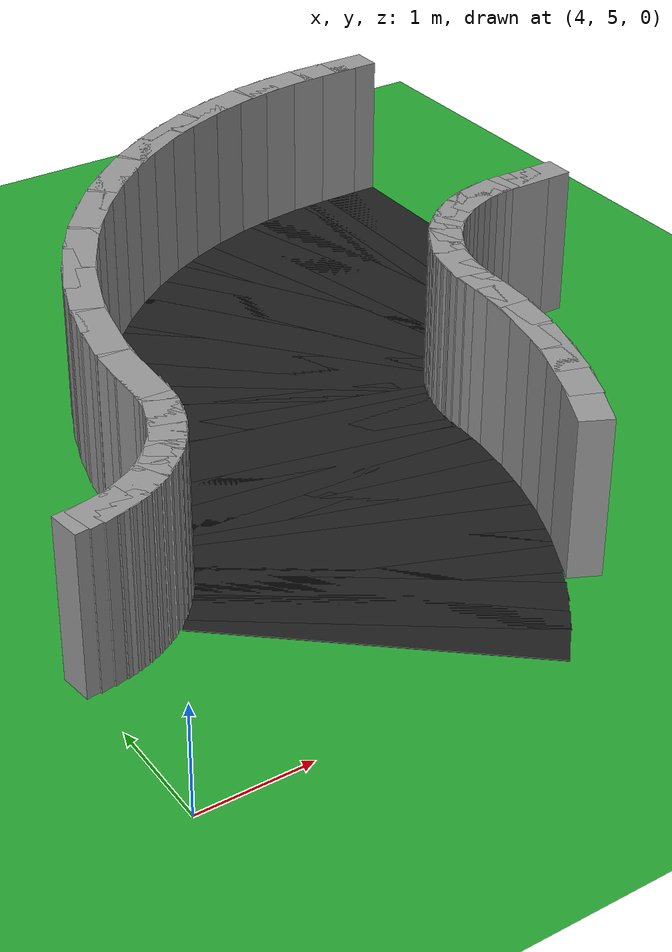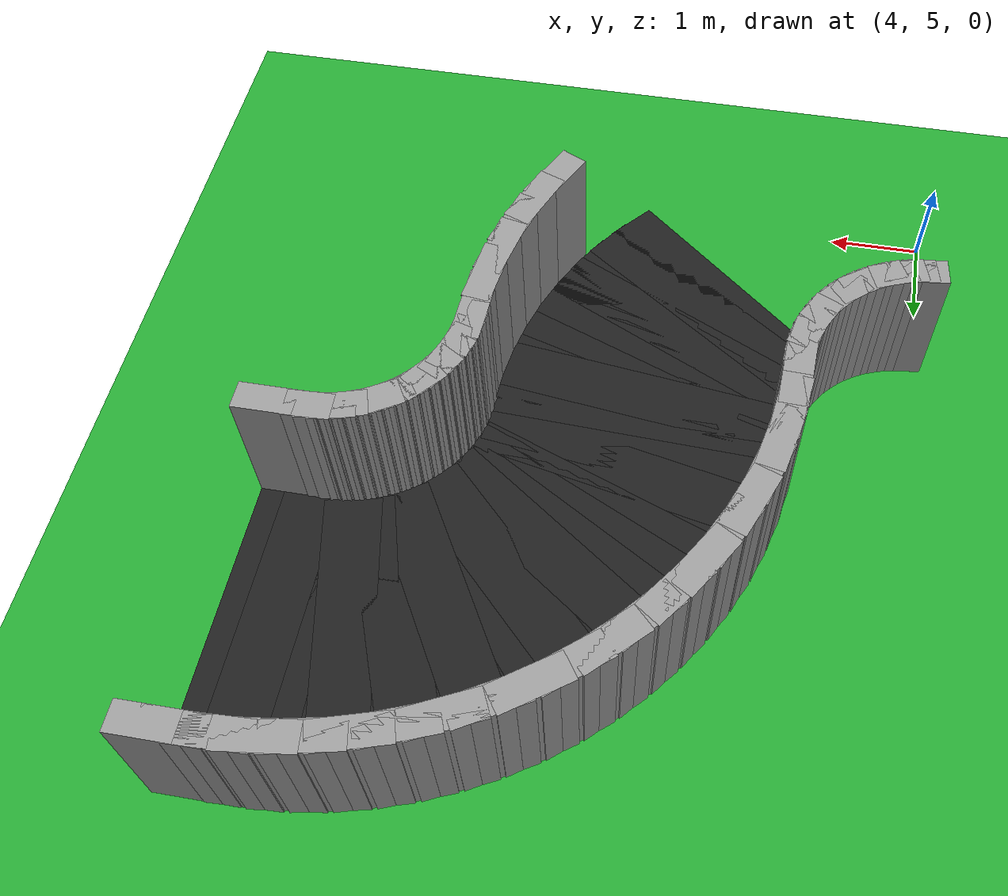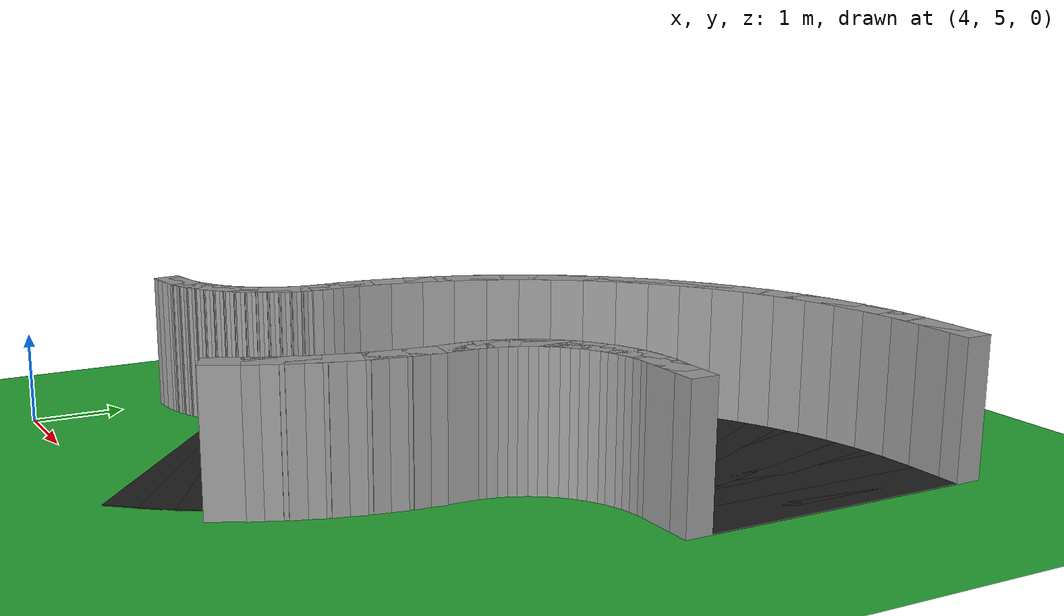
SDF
<sdf version="1.6">
 <world name="loop_extreme">
  <include><uri>model://sun</uri></include>
  <model name="ground_plane">
   <static>true</static>
   <link name="link">
    <collision name="collision">
     <surface><friction><ode><mu>100</mu><mu2>50</mu2></ode></friction></surface>
     <geometry><plane><normal>0 0 1</normal><size>120 120</size></plane></geometry>
    </collision>
    <visual name="visual">
     <geometry><plane><normal>0 0 1</normal><size>120 120</size></plane></geometry>
     <material>
      <script><uri>file://media/materials/scripts/gazebo.material</uri><name>Gazebo/Green</name></script>
     </material>
    </visual>
   </link>
  </model>
  <model name="asphalt_203">
   <static>true</static>
   <pose>10.377 11.004 0.005 0 0 3.14159</pose>
   <link name="link">
    <visual name="visual">
     <geometry><box><size>0.610 3.000 0.010</size></box></geometry>
     <material>
      <script><uri>file://media/materials/scripts/gazebo.material</uri><name>Gazebo/Black</name></script>
     </material>
    </visual>
   </link>
  </model>
  <model name="curbL_203">
   <static>true</static>
   <pose>10.377 9.354 0.750 0 0 3.14159</pose>
   <link name="link">
    <collision name="collision"><geometry><box><size>0.610 0.300 1.500</size></box></geometry></collision>
    <visual name="visual">
     <geometry><box><size>0.610 0.300 1.500</size></box></geometry>
     <material>
      <script><uri>file://media/materials/scripts/gazebo.material</uri><name>Gazebo/Grey</name></script>
     </material>
    </visual>
   </link>
  </model>
  <model name="curbR_203">
   <static>true</static>
   <pose>10.377 12.654 0.750 0 0 3.14159</pose>
   <link name="link">
    <collision name="collision"><geometry><box><size>0.610 0.300 1.500</size></box></geometry></collision>
    <visual name="visual">
     <geometry><box><size>0.610 0.300 1.500</size></box></geometry>
     <material>
      <script><uri>file://media/materials/scripts/gazebo.material</uri><name>Gazebo/Grey</name></script>
     </material>
    </visual>
   </link>
  </model>
  <model name="asphalt_204">
   <static>true</static>
   <pose>10.127 11.004 0.005 0 0 3.14159</pose>
   <link name="link">
    <visual name="visual">
     <geometry><box><size>0.610 3.000 0.010</size></box></geometry>
     <material>
      <script><uri>file://media/materials/scripts/gazebo.material</uri><name>Gazebo/Black</name></script>
     </material>
    </visual>
   </link>
  </model>
  <model name="curbL_204">
   <static>true</static>
   <pose>10.127 9.354 0.750 0 0 3.14159</pose>
   <link name="link">
    <collision name="collision"><geometry><box><size>0.610 0.300 1.500</size></box></geometry></collision>
    <visual name="visual">
     <geometry><box><size>0.610 0.300 1.500</size></box></geometry>
     <material>
      <script><uri>file://media/materials/scripts/gazebo.material</uri><name>Gazebo/Grey</name></script>
     </material>
    </visual>
   </link>
  </model>
  <model name="curbR_204">
   <static>true</static>
   <pose>10.127 12.654 0.750 0 0 3.14159</pose>
   <link name="link">
    <collision name="collision"><geometry><box><size>0.610 0.300 1.500</size></box></geometry></collision>
    <visual name="visual">
     <geometry><box><size>0.610 0.300 1.500</size></box></geometry>
     <material>
      <script><uri>file://media/materials/scripts/gazebo.material</uri><name>Gazebo/Grey</name></script>
     </material>
    </visual>
   </link>
  </model>
  <model name="asphalt_205">
   <static>true</static>
   <pose>9.878 10.999 0.005 0 0 -3.10026</pose>
   <link name="link">
    <visual name="visual">
     <geometry><box><size>0.608 3.000 0.010</size></box></geometry>
     <material>
      <script><uri>file://media/materials/scripts/gazebo.material</uri><name>Gazebo/Black</name></script>
     </material>
    </visual>
   </link>
  </model>
  <model name="curbL_205">
   <static>true</static>
   <pose>9.946 9.352 0.750 0 0 -3.10026</pose>
   <link name="link">
    <collision name="collision"><geometry><box><size>0.472 0.300 1.500</size></box></geometry></collision>
    <visual name="visual">
     <geometry><box><size>0.472 0.300 1.500</size></box></geometry>
     <material>
      <script><uri>file://media/materials/scripts/gazebo.material</uri><name>Gazebo/Grey</name></script>
     </material>
    </visual>
   </link>
  </model>
  <model name="curbR_205">
   <static>true</static>
   <pose>9.810 12.646 0.750 0 0 -3.10026</pose>
   <link name="link">
    <collision name="collision"><geometry><box><size>0.744 0.300 1.500</size></box></geometry></collision>
    <visual name="visual">
     <geometry><box><size>0.744 0.300 1.500</size></box></geometry>
     <material>
      <script><uri>file://media/materials/scripts/gazebo.material</uri><name>Gazebo/Grey</name></script>
     </material>
    </visual>
   </link>
  </model>
  <model name="asphalt_206">
   <static>true</static>
   <pose>9.631 10.978 0.005 0 0 -3.01758</pose>
   <link name="link">
    <visual name="visual">
     <geometry><box><size>0.608 3.000 0.010</size></box></geometry>
     <material>
      <script><uri>file://media/materials/scripts/gazebo.material</uri><name>Gazebo/Black</name></script>
     </material>
    </visual>
   </link>
  </model>
  <model name="curbL_206">
   <static>true</static>
   <pose>9.835 9.342 0.750 0 0 -3.01758</pose>
   <link name="link">
    <collision name="collision"><geometry><box><size>0.472 0.300 1.500</size></box></geometry></collision>
    <visual name="visual">
     <geometry><box><size>0.472 0.300 1.500</size></box></geometry>
     <material>
      <script><uri>file://media/materials/scripts/gazebo.material</uri><name>Gazebo/Grey</name></script>
     </material>
    </visual>
   </link>
  </model>
  <model name="curbR_206">
   <static>true</static>
   <pose>9.427 12.614 0.750 0 0 -3.01758</pose>
   <link name="link">
    <collision name="collision"><geometry><box><size>0.744 0.300 1.500</size></box></geometry></collision>
    <visual name="visual">
     <geometry><box><size>0.744 0.300 1.500</size></box></geometry>
     <material>
      <script><uri>file://media/materials/scripts/gazebo.material</uri><name>Gazebo/Grey</name></script>
     </material>
    </visual>
   </link>
  </model>
  <model name="asphalt_207">
   <static>true</static>
   <pose>9.386 10.937 0.005 0 0 -2.93491</pose>
   <link name="link">
    <visual name="visual">
     <geometry><box><size>0.608 3.000 0.010</size></box></geometry>
     <material>
      <script><uri>file://media/materials/scripts/gazebo.material</uri><name>Gazebo/Black</name></script>
     </material>
    </visual>
   </link>
  </model>
  <model name="curbL_207">
   <static>true</static>
   <pose>9.725 9.324 0.750 0 0 -2.93491</pose>
   <link name="link">
    <collision name="collision"><geometry><box><size>0.472 0.300 1.500</size></box></geometry></collision>
    <visual name="visual">
     <geometry><box><size>0.472 0.300 1.500</size></box></geometry>
     <material>
      <script><uri>file://media/materials/scripts/gazebo.material</uri><name>Gazebo/Grey</name></script>
     </material>
    </visual>
   </link>
  </model>
  <model name="curbR_207">
   <static>true</static>
   <pose>9.048 12.551 0.750 0 0 -2.93491</pose>
   <link name="link">
    <collision name="collision"><geometry><box><size>0.744 0.300 1.500</size></box></geometry></collision>
    <visual name="visual">
     <geometry><box><size>0.744 0.300 1.500</size></box></geometry>
     <material>
      <script><uri>file://media/materials/scripts/gazebo.material</uri><name>Gazebo/Grey</name></script>
     </material>
    </visual>
   </link>
  </model>
  <model name="asphalt_208">
   <static>true</static>
   <pose>9.146 10.877 0.005 0 0 -2.85224</pose>
   <link name="link">
    <visual name="visual">
     <geometry><box><size>0.608 3.000 0.010</size></box></geometry>
     <material>
      <script><uri>file://media/materials/scripts/gazebo.material</uri><name>Gazebo/Black</name></script>
     </material>
    </visual>
   </link>
  </model>
  <model name="curbL_208">
   <static>true</static>
   <pose>9.617 9.297 0.750 0 0 -2.85224</pose>
   <link name="link">
    <collision name="collision"><geometry><box><size>0.472 0.300 1.500</size></box></geometry></collision>
    <visual name="visual">
     <geometry><box><size>0.472 0.300 1.500</size></box></geometry>
     <material>
      <script><uri>file://media/materials/scripts/gazebo.material</uri><name>Gazebo/Grey</name></script>
     </material>
    </visual>
   </link>
  </model>
  <model name="curbR_208">
   <static>true</static>
   <pose>8.676 12.457 0.750 0 0 -2.85224</pose>
   <link name="link">
    <collision name="collision"><geometry><box><size>0.744 0.300 1.500</size></box></geometry></collision>
    <visual name="visual">
     <geometry><box><size>0.744 0.300 1.500</size></box></geometry>
     <material>
      <script><uri>file://media/materials/scripts/gazebo.material</uri><name>Gazebo/Grey</name></script>
     </material>
    </visual>
   </link>
  </model>
  <model name="asphalt_209">
   <static>true</static>
   <pose>8.912 10.796 0.005 0 0 -2.76956</pose>
   <link name="link">
    <visual name="visual">
     <geometry><box><size>0.608 3.000 0.010</size></box></geometry>
     <material>
      <script><uri>file://media/materials/scripts/gazebo.material</uri><name>Gazebo/Black</name></script>
     </material>
    </visual>
   </link>
  </model>
  <model name="curbL_209">
   <static>true</static>
   <pose>9.511 9.260 0.750 0 0 -2.76956</pose>
   <link name="link">
    <collision name="collision"><geometry><box><size>0.472 0.300 1.500</size></box></geometry></collision>
    <visual name="visual">
     <geometry><box><size>0.472 0.300 1.500</size></box></geometry>
     <material>
      <script><uri>file://media/materials/scripts/gazebo.material</uri><name>Gazebo/Grey</name></script>
     </material>
    </visual>
   </link>
  </model>
  <model name="curbR_209">
   <static>true</static>
   <pose>8.313 12.332 0.750 0 0 -2.76956</pose>
   <link name="link">
    <collision name="collision"><geometry><box><size>0.744 0.300 1.500</size></box></geometry></collision>
    <visual name="visual">
     <geometry><box><size>0.744 0.300 1.500</size></box></geometry>
     <material>
      <script><uri>file://media/materials/scripts/gazebo.material</uri><name>Gazebo/Grey</name></script>
     </material>
    </visual>
   </link>
  </model>
  <model name="asphalt_210">
   <static>true</static>
   <pose>8.685 10.697 0.005 0 0 -2.68689</pose>
   <link name="link">
    <visual name="visual">
     <geometry><box><size>0.608 3.000 0.010</size></box></geometry>
     <material>
      <script><uri>file://media/materials/scripts/gazebo.material</uri><name>Gazebo/Black</name></script>
     </material>
    </visual>
   </link>
  </model>
  <model name="curbL_210">
   <static>true</static>
   <pose>9.409 9.216 0.750 0 0 -2.68689</pose>
   <link name="link">
    <collision name="collision"><geometry><box><size>0.472 0.300 1.500</size></box></geometry></collision>
    <visual name="visual">
     <geometry><box><size>0.472 0.300 1.500</size></box></geometry>
     <material>
      <script><uri>file://media/materials/scripts/gazebo.material</uri><name>Gazebo/Grey</name></script>
     </material>
    </visual>
   </link>
  </model>
  <model name="curbR_210">
   <static>true</static>
   <pose>7.961 12.178 0.750 0 0 -2.68689</pose>
   <link name="link">
    <collision name="collision"><geometry><box><size>0.744 0.300 1.500</size></box></geometry></collision>
    <visual name="visual">
     <geometry><box><size>0.744 0.300 1.500</size></box></geometry>
     <material>
      <script><uri>file://media/materials/scripts/gazebo.material</uri><name>Gazebo/Grey</name></script>
     </material>
    </visual>
   </link>
  </model>
  <model name="asphalt_211">
   <static>true</static>
   <pose>8.467 10.579 0.005 0 0 -2.60421</pose>
   <link name="link">
    <visual name="visual">
     <geometry><box><size>0.608 3.000 0.010</size></box></geometry>
     <material>
      <script><uri>file://media/materials/scripts/gazebo.material</uri><name>Gazebo/Black</name></script>
     </material>
    </visual>
   </link>
  </model>
  <model name="curbL_211">
   <static>true</static>
   <pose>9.311 9.162 0.750 0 0 -2.60421</pose>
   <link name="link">
    <collision name="collision"><geometry><box><size>0.472 0.300 1.500</size></box></geometry></collision>
    <visual name="visual">
     <geometry><box><size>0.472 0.300 1.500</size></box></geometry>
     <material>
      <script><uri>file://media/materials/scripts/gazebo.material</uri><name>Gazebo/Grey</name></script>
     </material>
    </visual>
   </link>
  </model>
  <model name="curbR_211">
   <static>true</static>
   <pose>7.623 11.995 0.750 0 0 -2.60421</pose>
   <link name="link">
    <collision name="collision"><geometry><box><size>0.744 0.300 1.500</size></box></geometry></collision>
    <visual name="visual">
     <geometry><box><size>0.744 0.300 1.500</size></box></geometry>
     <material>
      <script><uri>file://media/materials/scripts/gazebo.material</uri><name>Gazebo/Grey</name></script>
     </material>
    </visual>
   </link>
  </model>
  <model name="asphalt_212">
   <static>true</static>
   <pose>8.259 10.443 0.005 0 0 -2.52154</pose>
   <link name="link">
    <visual name="visual">
     <geometry><box><size>0.608 3.000 0.010</size></box></geometry>
     <material>
      <script><uri>file://media/materials/scripts/gazebo.material</uri><name>Gazebo/Black</name></script>
     </material>
    </visual>
   </link>
  </model>
  <model name="curbL_212">
   <static>true</static>
   <pose>9.217 9.101 0.750 0 0 -2.52154</pose>
   <link name="link">
    <collision name="collision"><geometry><box><size>0.472 0.300 1.500</size></box></geometry></collision>
    <visual name="visual">
     <geometry><box><size>0.472 0.300 1.500</size></box></geometry>
     <material>
      <script><uri>file://media/materials/scripts/gazebo.material</uri><name>Gazebo/Grey</name></script>
     </material>
    </visual>
   </link>
  </model>
  <model name="curbR_212">
   <static>true</static>
   <pose>7.302 11.785 0.750 0 0 -2.52154</pose>
   <link name="link">
    <collision name="collision"><geometry><box><size>0.744 0.300 1.500</size></box></geometry></collision>
    <visual name="visual">
     <geometry><box><size>0.744 0.300 1.500</size></box></geometry>
     <material>
      <script><uri>file://media/materials/scripts/gazebo.material</uri><name>Gazebo/Grey</name></script>
     </material>
    </visual>
   </link>
  </model>
  <model name="asphalt_213">
   <static>true</static>
   <pose>8.064 10.291 0.005 0 0 -2.43887</pose>
   <link name="link">
    <visual name="visual">
     <geometry><box><size>0.608 3.000 0.010</size></box></geometry>
     <material>
      <script><uri>file://media/materials/scripts/gazebo.material</uri><name>Gazebo/Black</name></script>
     </material>
    </visual>
   </link>
  </model>
  <model name="curbL_213">
   <static>true</static>
   <pose>9.129 9.033 0.750 0 0 -2.43887</pose>
   <link name="link">
    <collision name="collision"><geometry><box><size>0.472 0.300 1.500</size></box></geometry></collision>
    <visual name="visual">
     <geometry><box><size>0.472 0.300 1.500</size></box></geometry>
     <material>
      <script><uri>file://media/materials/scripts/gazebo.material</uri><name>Gazebo/Grey</name></script>
     </material>
    </visual>
   </link>
  </model>
  <model name="curbR_213">
   <static>true</static>
   <pose>6.998 11.549 0.750 0 0 -2.43887</pose>
   <link name="link">
    <collision name="collision"><geometry><box><size>0.744 0.300 1.500</size></box></geometry></collision>
    <visual name="visual">
     <geometry><box><size>0.744 0.300 1.500</size></box></geometry>
     <material>
      <script><uri>file://media/materials/scripts/gazebo.material</uri><name>Gazebo/Grey</name></script>
     </material>
    </visual>
   </link>
  </model>
  <model name="asphalt_214">
   <static>true</static>
   <pose>7.882 10.123 0.005 0 0 -2.35619</pose>
   <link name="link">
    <visual name="visual">
     <geometry><box><size>0.608 3.000 0.010</size></box></geometry>
     <material>
      <script><uri>file://media/materials/scripts/gazebo.material</uri><name>Gazebo/Black</name></script>
     </material>
    </visual>
   </link>
  </model>
  <model name="curbL_214">
   <static>true</static>
   <pose>9.047 8.957 0.750 0 0 -2.35619</pose>
   <link name="link">
    <collision name="collision"><geometry><box><size>0.472 0.300 1.500</size></box></geometry></collision>
    <visual name="visual">
     <geometry><box><size>0.472 0.300 1.500</size></box></geometry>
     <material>
      <script><uri>file://media/materials/scripts/gazebo.material</uri><name>Gazebo/Grey</name></script>
     </material>
    </visual>
   </link>
  </model>
  <model name="curbR_214">
   <static>true</static>
   <pose>6.716 11.289 0.750 0 0 -2.35619</pose>
   <link name="link">
    <collision name="collision"><geometry><box><size>0.744 0.300 1.500</size></box></geometry></collision>
    <visual name="visual">
     <geometry><box><size>0.744 0.300 1.500</size></box></geometry>
     <material>
      <script><uri>file://media/materials/scripts/gazebo.material</uri><name>Gazebo/Grey</name></script>
     </material>
    </visual>
   </link>
  </model>
  <model name="asphalt_215">
   <static>true</static>
   <pose>7.714 9.941 0.005 0 0 -2.27352</pose>
   <link name="link">
    <visual name="visual">
     <geometry><box><size>0.608 3.000 0.010</size></box></geometry>
     <material>
      <script><uri>file://media/materials/scripts/gazebo.material</uri><name>Gazebo/Black</name></script>
     </material>
    </visual>
   </link>
  </model>
  <model name="curbL_215">
   <static>true</static>
   <pose>8.972 8.875 0.750 0 0 -2.27352</pose>
   <link name="link">
    <collision name="collision"><geometry><box><size>0.472 0.300 1.500</size></box></geometry></collision>
    <visual name="visual">
     <geometry><box><size>0.472 0.300 1.500</size></box></geometry>
     <material>
      <script><uri>file://media/materials/scripts/gazebo.material</uri><name>Gazebo/Grey</name></script>
     </material>
    </visual>
   </link>
  </model>
  <model name="curbR_215">
   <static>true</static>
   <pose>6.456 11.006 0.750 0 0 -2.27352</pose>
   <link name="link">
    <collision name="collision"><geometry><box><size>0.744 0.300 1.500</size></box></geometry></collision>
    <visual name="visual">
     <geometry><box><size>0.744 0.300 1.500</size></box></geometry>
     <material>
      <script><uri>file://media/materials/scripts/gazebo.material</uri><name>Gazebo/Grey</name></script>
     </material>
    </visual>
   </link>
  </model>
  <model name="asphalt_216">
   <static>true</static>
   <pose>7.562 9.745 0.005 0 0 -2.19085</pose>
   <link name="link">
    <visual name="visual">
     <geometry><box><size>0.608 3.000 0.010</size></box></geometry>
     <material>
      <script><uri>file://media/materials/scripts/gazebo.material</uri><name>Gazebo/Black</name></script>
     </material>
    </visual>
   </link>
  </model>
  <model name="curbL_216">
   <static>true</static>
   <pose>8.903 8.787 0.750 0 0 -2.19085</pose>
   <link name="link">
    <collision name="collision"><geometry><box><size>0.472 0.300 1.500</size></box></geometry></collision>
    <visual name="visual">
     <geometry><box><size>0.472 0.300 1.500</size></box></geometry>
     <material>
      <script><uri>file://media/materials/scripts/gazebo.material</uri><name>Gazebo/Grey</name></script>
     </material>
    </visual>
   </link>
  </model>
  <model name="curbR_216">
   <static>true</static>
   <pose>6.220 10.703 0.750 0 0 -2.19085</pose>
   <link name="link">
    <collision name="collision"><geometry><box><size>0.744 0.300 1.500</size></box></geometry></collision>
    <visual name="visual">
     <geometry><box><size>0.744 0.300 1.500</size></box></geometry>
     <material>
      <script><uri>file://media/materials/scripts/gazebo.material</uri><name>Gazebo/Grey</name></script>
     </material>
    </visual>
   </link>
  </model>
  <model name="asphalt_217">
   <static>true</static>
   <pose>7.426 9.538 0.005 0 0 -2.10817</pose>
   <link name="link">
    <visual name="visual">
     <geometry><box><size>0.608 3.000 0.010</size></box></geometry>
     <material>
      <script><uri>file://media/materials/scripts/gazebo.material</uri><name>Gazebo/Black</name></script>
     </material>
    </visual>
   </link>
  </model>
  <model name="curbL_217">
   <static>true</static>
   <pose>8.842 8.694 0.750 0 0 -2.10817</pose>
   <link name="link">
    <collision name="collision"><geometry><box><size>0.472 0.300 1.500</size></box></geometry></collision>
    <visual name="visual">
     <geometry><box><size>0.472 0.300 1.500</size></box></geometry>
     <material>
      <script><uri>file://media/materials/scripts/gazebo.material</uri><name>Gazebo/Grey</name></script>
     </material>
    </visual>
   </link>
  </model>
  <model name="curbR_217">
   <static>true</static>
   <pose>6.010 10.382 0.750 0 0 -2.10817</pose>
   <link name="link">
    <collision name="collision"><geometry><box><size>0.744 0.300 1.500</size></box></geometry></collision>
    <visual name="visual">
     <geometry><box><size>0.744 0.300 1.500</size></box></geometry>
     <material>
      <script><uri>file://media/materials/scripts/gazebo.material</uri><name>Gazebo/Grey</name></script>
     </material>
    </visual>
   </link>
  </model>
  <model name="asphalt_218">
   <static>true</static>
   <pose>7.308 9.320 0.005 0 0 -2.02550</pose>
   <link name="link">
    <visual name="visual">
     <geometry><box><size>0.608 3.000 0.010</size></box></geometry>
     <material>
      <script><uri>file://media/materials/scripts/gazebo.material</uri><name>Gazebo/Black</name></script>
     </material>
    </visual>
   </link>
  </model>
  <model name="curbL_218">
   <static>true</static>
   <pose>8.789 8.596 0.750 0 0 -2.02550</pose>
   <link name="link">
    <collision name="collision"><geometry><box><size>0.472 0.300 1.500</size></box></geometry></collision>
    <visual name="visual">
     <geometry><box><size>0.472 0.300 1.500</size></box></geometry>
     <material>
      <script><uri>file://media/materials/scripts/gazebo.material</uri><name>Gazebo/Grey</name></script>
     </material>
    </visual>
   </link>
  </model>
  <model name="curbR_218">
   <static>true</static>
   <pose>5.827 10.044 0.750 0 0 -2.02550</pose>
   <link name="link">
    <collision name="collision"><geometry><box><size>0.744 0.300 1.500</size></box></geometry></collision>
    <visual name="visual">
     <geometry><box><size>0.744 0.300 1.500</size></box></geometry>
     <material>
      <script><uri>file://media/materials/scripts/gazebo.material</uri><name>Gazebo/Grey</name></script>
     </material>
    </visual>
   </link>
  </model>
  <model name="asphalt_219">
   <static>true</static>
   <pose>7.209 9.093 0.005 0 0 -1.94283</pose>
   <link name="link">
    <visual name="visual">
     <geometry><box><size>0.608 3.000 0.010</size></box></geometry>
     <material>
      <script><uri>file://media/materials/scripts/gazebo.material</uri><name>Gazebo/Black</name></script>
     </material>
    </visual>
   </link>
  </model>
  <model name="curbL_219">
   <static>true</static>
   <pose>8.744 8.494 0.750 0 0 -1.94283</pose>
   <link name="link">
    <collision name="collision"><geometry><box><size>0.472 0.300 1.500</size></box></geometry></collision>
    <visual name="visual">
     <geometry><box><size>0.472 0.300 1.500</size></box></geometry>
     <material>
      <script><uri>file://media/materials/scripts/gazebo.material</uri><name>Gazebo/Grey</name></script>
     </material>
    </visual>
   </link>
  </model>
  <model name="curbR_219">
   <static>true</static>
   <pose>5.673 9.692 0.750 0 0 -1.94283</pose>
   <link name="link">
    <collision name="collision"><geometry><box><size>0.744 0.300 1.500</size></box></geometry></collision>
    <visual name="visual">
     <geometry><box><size>0.744 0.300 1.500</size></box></geometry>
     <material>
      <script><uri>file://media/materials/scripts/gazebo.material</uri><name>Gazebo/Grey</name></script>
     </material>
    </visual>
   </link>
  </model>
  <model name="asphalt_220">
   <static>true</static>
   <pose>7.128 8.859 0.005 0 0 -1.86015</pose>
   <link name="link">
    <visual name="visual">
     <geometry><box><size>0.608 3.000 0.010</size></box></geometry>
     <material>
      <script><uri>file://media/materials/scripts/gazebo.material</uri><name>Gazebo/Black</name></script>
     </material>
    </visual>
   </link>
  </model>
  <model name="curbL_220">
   <static>true</static>
   <pose>8.708 8.388 0.750 0 0 -1.86015</pose>
   <link name="link">
    <collision name="collision"><geometry><box><size>0.472 0.300 1.500</size></box></geometry></collision>
    <visual name="visual">
     <geometry><box><size>0.472 0.300 1.500</size></box></geometry>
     <material>
      <script><uri>file://media/materials/scripts/gazebo.material</uri><name>Gazebo/Grey</name></script>
     </material>
    </visual>
   </link>
  </model>
  <model name="curbR_220">
   <static>true</static>
   <pose>5.548 9.329 0.750 0 0 -1.86015</pose>
   <link name="link">
    <collision name="collision"><geometry><box><size>0.744 0.300 1.500</size></box></geometry></collision>
    <visual name="visual">
     <geometry><box><size>0.744 0.300 1.500</size></box></geometry>
     <material>
      <script><uri>file://media/materials/scripts/gazebo.material</uri><name>Gazebo/Grey</name></script>
     </material>
    </visual>
   </link>
  </model>
  <model name="asphalt_221">
   <static>true</static>
   <pose>7.067 8.618 0.005 0 0 -1.77748</pose>
   <link name="link">
    <visual name="visual">
     <geometry><box><size>0.608 3.000 0.010</size></box></geometry>
     <material>
      <script><uri>file://media/materials/scripts/gazebo.material</uri><name>Gazebo/Black</name></script>
     </material>
    </visual>
   </link>
  </model>
  <model name="curbL_221">
   <static>true</static>
   <pose>8.681 8.280 0.750 0 0 -1.77748</pose>
   <link name="link">
    <collision name="collision"><geometry><box><size>0.472 0.300 1.500</size></box></geometry></collision>
    <visual name="visual">
     <geometry><box><size>0.472 0.300 1.500</size></box></geometry>
     <material>
      <script><uri>file://media/materials/scripts/gazebo.material</uri><name>Gazebo/Grey</name></script>
     </material>
    </visual>
   </link>
  </model>
  <model name="curbR_221">
   <static>true</static>
   <pose>5.454 8.957 0.750 0 0 -1.77748</pose>
   <link name="link">
    <collision name="collision"><geometry><box><size>0.744 0.300 1.500</size></box></geometry></collision>
    <visual name="visual">
     <geometry><box><size>0.744 0.300 1.500</size></box></geometry>
     <material>
      <script><uri>file://media/materials/scripts/gazebo.material</uri><name>Gazebo/Grey</name></script>
     </material>
    </visual>
   </link>
  </model>
  <model name="asphalt_222">
   <static>true</static>
   <pose>7.026 8.374 0.005 0 0 -1.69481</pose>
   <link name="link">
    <visual name="visual">
     <geometry><box><size>0.608 3.000 0.010</size></box></geometry>
     <material>
      <script><uri>file://media/materials/scripts/gazebo.material</uri><name>Gazebo/Black</name></script>
     </material>
    </visual>
   </link>
  </model>
  <model name="curbL_222">
   <static>true</static>
   <pose>8.662 8.170 0.750 0 0 -1.69481</pose>
   <link name="link">
    <collision name="collision"><geometry><box><size>0.472 0.300 1.500</size></box></geometry></collision>
    <visual name="visual">
     <geometry><box><size>0.472 0.300 1.500</size></box></geometry>
     <material>
      <script><uri>file://media/materials/scripts/gazebo.material</uri><name>Gazebo/Grey</name></script>
     </material>
    </visual>
   </link>
  </model>
  <model name="curbR_222">
   <static>true</static>
   <pose>5.391 8.578 0.750 0 0 -1.69481</pose>
   <link name="link">
    <collision name="collision"><geometry><box><size>0.744 0.300 1.500</size></box></geometry></collision>
    <visual name="visual">
     <geometry><box><size>0.744 0.300 1.500</size></box></geometry>
     <material>
      <script><uri>file://media/materials/scripts/gazebo.material</uri><name>Gazebo/Grey</name></script>
     </material>
    </visual>
   </link>
  </model>
  <model name="asphalt_223">
   <static>true</static>
   <pose>7.006 8.127 0.005 0 0 -1.61213</pose>
   <link name="link">
    <visual name="visual">
     <geometry><box><size>0.608 3.000 0.010</size></box></geometry>
     <material>
      <script><uri>file://media/materials/scripts/gazebo.material</uri><name>Gazebo/Black</name></script>
     </material>
    </visual>
   </link>
  </model>
  <model name="curbL_223">
   <static>true</static>
   <pose>8.653 8.059 0.750 0 0 -1.61213</pose>
   <link name="link">
    <collision name="collision"><geometry><box><size>0.472 0.300 1.500</size></box></geometry></collision>
    <visual name="visual">
     <geometry><box><size>0.472 0.300 1.500</size></box></geometry>
     <material>
      <script><uri>file://media/materials/scripts/gazebo.material</uri><name>Gazebo/Grey</name></script>
     </material>
    </visual>
   </link>
  </model>
  <model name="curbR_223">
   <static>true</static>
   <pose>5.359 8.195 0.750 0 0 -1.61213</pose>
   <link name="link">
    <collision name="collision"><geometry><box><size>0.744 0.300 1.500</size></box></geometry></collision>
    <visual name="visual">
     <geometry><box><size>0.744 0.300 1.500</size></box></geometry>
     <material>
      <script><uri>file://media/materials/scripts/gazebo.material</uri><name>Gazebo/Grey</name></script>
     </material>
    </visual>
   </link>
  </model>
  <model name="asphalt_224">
   <static>true</static>
   <pose>6.996 7.879 0.005 0 0 -1.61213</pose>
   <link name="link">
    <visual name="visual">
     <geometry><box><size>0.608 3.000 0.010</size></box></geometry>
     <material>
      <script><uri>file://media/materials/scripts/gazebo.material</uri><name>Gazebo/Black</name></script>
     </material>
    </visual>
   </link>
  </model>
  <model name="curbL_224">
   <static>true</static>
   <pose>8.643 7.811 0.750 0 0 -1.61213</pose>
   <link name="link">
    <collision name="collision"><geometry><box><size>0.744 0.300 1.500</size></box></geometry></collision>
    <visual name="visual">
     <geometry><box><size>0.744 0.300 1.500</size></box></geometry>
     <material>
      <script><uri>file://media/materials/scripts/gazebo.material</uri><name>Gazebo/Grey</name></script>
     </material>
    </visual>
   </link>
  </model>
  <model name="curbR_224">
   <static>true</static>
   <pose>5.349 7.947 0.750 0 0 -1.61213</pose>
   <link name="link">
    <collision name="collision"><geometry><box><size>0.472 0.300 1.500</size></box></geometry></collision>
    <visual name="visual">
     <geometry><box><size>0.472 0.300 1.500</size></box></geometry>
     <material>
      <script><uri>file://media/materials/scripts/gazebo.material</uri><name>Gazebo/Grey</name></script>
     </material>
    </visual>
   </link>
  </model>
  <model name="asphalt_225">
   <static>true</static>
   <pose>6.975 7.632 0.005 0 0 -1.69481</pose>
   <link name="link">
    <visual name="visual">
     <geometry><box><size>0.608 3.000 0.010</size></box></geometry>
     <material>
      <script><uri>file://media/materials/scripts/gazebo.material</uri><name>Gazebo/Black</name></script>
     </material>
    </visual>
   </link>
  </model>
  <model name="curbL_225">
   <static>true</static>
   <pose>8.611 7.428 0.750 0 0 -1.69481</pose>
   <link name="link">
    <collision name="collision"><geometry><box><size>0.744 0.300 1.500</size></box></geometry></collision>
    <visual name="visual">
     <geometry><box><size>0.744 0.300 1.500</size></box></geometry>
     <material>
      <script><uri>file://media/materials/scripts/gazebo.material</uri><name>Gazebo/Grey</name></script>
     </material>
    </visual>
   </link>
  </model>
  <model name="curbR_225">
   <static>true</static>
   <pose>5.339 7.836 0.750 0 0 -1.69481</pose>
   <link name="link">
    <collision name="collision"><geometry><box><size>0.472 0.300 1.500</size></box></geometry></collision>
    <visual name="visual">
     <geometry><box><size>0.472 0.300 1.500</size></box></geometry>
     <material>
      <script><uri>file://media/materials/scripts/gazebo.material</uri><name>Gazebo/Grey</name></script>
     </material>
    </visual>
   </link>
  </model>
  <model name="asphalt_226">
   <static>true</static>
   <pose>6.934 7.388 0.005 0 0 -1.77748</pose>
   <link name="link">
    <visual name="visual">
     <geometry><box><size>0.608 3.000 0.010</size></box></geometry>
     <material>
      <script><uri>file://media/materials/scripts/gazebo.material</uri><name>Gazebo/Black</name></script>
     </material>
    </visual>
   </link>
  </model>
  <model name="curbL_226">
   <static>true</static>
   <pose>8.548 7.049 0.750 0 0 -1.77748</pose>
   <link name="link">
    <collision name="collision"><geometry><box><size>0.744 0.300 1.500</size></box></geometry></collision>
    <visual name="visual">
     <geometry><box><size>0.744 0.300 1.500</size></box></geometry>
     <material>
      <script><uri>file://media/materials/scripts/gazebo.material</uri><name>Gazebo/Grey</name></script>
     </material>
    </visual>
   </link>
  </model>
  <model name="curbR_226">
   <static>true</static>
   <pose>5.321 7.726 0.750 0 0 -1.77748</pose>
   <link name="link">
    <collision name="collision"><geometry><box><size>0.472 0.300 1.500</size></box></geometry></collision>
    <visual name="visual">
     <geometry><box><size>0.472 0.300 1.500</size></box></geometry>
     <material>
      <script><uri>file://media/materials/scripts/gazebo.material</uri><name>Gazebo/Grey</name></script>
     </material>
    </visual>
   </link>
  </model>
  <model name="asphalt_227">
   <static>true</static>
   <pose>6.874 7.147 0.005 0 0 -1.86015</pose>
   <link name="link">
    <visual name="visual">
     <geometry><box><size>0.608 3.000 0.010</size></box></geometry>
     <material>
      <script><uri>file://media/materials/scripts/gazebo.material</uri><name>Gazebo/Black</name></script>
     </material>
    </visual>
   </link>
  </model>
  <model name="curbL_227">
   <static>true</static>
   <pose>8.454 6.677 0.750 0 0 -1.86015</pose>
   <link name="link">
    <collision name="collision"><geometry><box><size>0.744 0.300 1.500</size></box></geometry></collision>
    <visual name="visual">
     <geometry><box><size>0.744 0.300 1.500</size></box></geometry>
     <material>
      <script><uri>file://media/materials/scripts/gazebo.material</uri><name>Gazebo/Grey</name></script>
     </material>
    </visual>
   </link>
  </model>
  <model name="curbR_227">
   <static>true</static>
   <pose>5.294 7.618 0.750 0 0 -1.86015</pose>
   <link name="link">
    <collision name="collision"><geometry><box><size>0.472 0.300 1.500</size></box></geometry></collision>
    <visual name="visual">
     <geometry><box><size>0.472 0.300 1.500</size></box></geometry>
     <material>
      <script><uri>file://media/materials/scripts/gazebo.material</uri><name>Gazebo/Grey</name></script>
     </material>
    </visual>
   </link>
  </model>
  <model name="asphalt_228">
   <static>true</static>
   <pose>6.793 6.913 0.005 0 0 -1.94283</pose>
   <link name="link">
    <visual name="visual">
     <geometry><box><size>0.608 3.000 0.010</size></box></geometry>
     <material>
      <script><uri>file://media/materials/scripts/gazebo.material</uri><name>Gazebo/Black</name></script>
     </material>
    </visual>
   </link>
  </model>
  <model name="curbL_228">
   <static>true</static>
   <pose>8.329 6.314 0.750 0 0 -1.94283</pose>
   <link name="link">
    <collision name="collision"><geometry><box><size>0.744 0.300 1.500</size></box></geometry></collision>
    <visual name="visual">
     <geometry><box><size>0.744 0.300 1.500</size></box></geometry>
     <material>
      <script><uri>file://media/materials/scripts/gazebo.material</uri><name>Gazebo/Grey</name></script>
     </material>
    </visual>
   </link>
  </model>
  <model name="curbR_228">
   <static>true</static>
   <pose>5.257 7.512 0.750 0 0 -1.94283</pose>
   <link name="link">
    <collision name="collision"><geometry><box><size>0.472 0.300 1.500</size></box></geometry></collision>
    <visual name="visual">
     <geometry><box><size>0.472 0.300 1.500</size></box></geometry>
     <material>
      <script><uri>file://media/materials/scripts/gazebo.material</uri><name>Gazebo/Grey</name></script>
     </material>
    </visual>
   </link>
  </model>
  <model name="asphalt_229">
   <static>true</static>
   <pose>6.694 6.686 0.005 0 0 -2.02550</pose>
   <link name="link">
    <visual name="visual">
     <geometry><box><size>0.608 3.000 0.010</size></box></geometry>
     <material>
      <script><uri>file://media/materials/scripts/gazebo.material</uri><name>Gazebo/Black</name></script>
     </material>
    </visual>
   </link>
  </model>
  <model name="curbL_229">
   <static>true</static>
   <pose>8.175 5.962 0.750 0 0 -2.02550</pose>
   <link name="link">
    <collision name="collision"><geometry><box><size>0.744 0.300 1.500</size></box></geometry></collision>
    <visual name="visual">
     <geometry><box><size>0.744 0.300 1.500</size></box></geometry>
     <material>
      <script><uri>file://media/materials/scripts/gazebo.material</uri><name>Gazebo/Grey</name></script>
     </material>
    </visual>
   </link>
  </model>
  <model name="curbR_229">
   <static>true</static>
   <pose>5.213 7.410 0.750 0 0 -2.02550</pose>
   <link name="link">
    <collision name="collision"><geometry><box><size>0.472 0.300 1.500</size></box></geometry></collision>
    <visual name="visual">
     <geometry><box><size>0.472 0.300 1.500</size></box></geometry>
     <material>
      <script><uri>file://media/materials/scripts/gazebo.material</uri><name>Gazebo/Grey</name></script>
     </material>
    </visual>
   </link>
  </model>
  <model name="asphalt_230">
   <static>true</static>
   <pose>6.576 6.468 0.005 0 0 -2.10817</pose>
   <link name="link">
    <visual name="visual">
     <geometry><box><size>0.608 3.000 0.010</size></box></geometry>
     <material>
      <script><uri>file://media/materials/scripts/gazebo.material</uri><name>Gazebo/Black</name></script>
     </material>
    </visual>
   </link>
  </model>
  <model name="curbR_230">
   <static>true</static>
   <pose>5.159 7.312 0.750 0 0 -2.10817</pose>
   <link name="link">
    <collision name="collision"><geometry><box><size>0.472 0.300 1.500</size></box></geometry></collision>
    <visual name="visual">
     <geometry><box><size>0.472 0.300 1.500</size></box></geometry>
     <material>
      <script><uri>file://media/materials/scripts/gazebo.material</uri><name>Gazebo/Grey</name></script>
     </material>
    </visual>
   </link>
  </model>
  <model name="asphalt_231">
   <static>true</static>
   <pose>6.440 6.261 0.005 0 0 -2.19085</pose>
   <link name="link">
    <visual name="visual">
     <geometry><box><size>0.608 3.000 0.010</size></box></geometry>
     <material>
      <script><uri>file://media/materials/scripts/gazebo.material</uri><name>Gazebo/Black</name></script>
     </material>
    </visual>
   </link>
  </model>
  <model name="curbR_231">
   <static>true</static>
   <pose>5.098 7.219 0.750 0 0 -2.19085</pose>
   <link name="link">
    <collision name="collision"><geometry><box><size>0.472 0.300 1.500</size></box></geometry></collision>
    <visual name="visual">
     <geometry><box><size>0.472 0.300 1.500</size></box></geometry>
     <material>
      <script><uri>file://media/materials/scripts/gazebo.material</uri><name>Gazebo/Grey</name></script>
     </material>
    </visual>
   </link>
  </model>
  <model name="asphalt_232">
   <static>true</static>
   <pose>6.288 6.065 0.005 0 0 -2.27352</pose>
   <link name="link">
    <visual name="visual">
     <geometry><box><size>0.608 3.000 0.010</size></box></geometry>
     <material>
      <script><uri>file://media/materials/scripts/gazebo.material</uri><name>Gazebo/Black</name></script>
     </material>
    </visual>
   </link>
  </model>
  <model name="curbR_232">
   <static>true</static>
   <pose>5.030 7.131 0.750 0 0 -2.27352</pose>
   <link name="link">
    <collision name="collision"><geometry><box><size>0.472 0.300 1.500</size></box></geometry></collision>
    <visual name="visual">
     <geometry><box><size>0.472 0.300 1.500</size></box></geometry>
     <material>
      <script><uri>file://media/materials/scripts/gazebo.material</uri><name>Gazebo/Grey</name></script>
     </material>
    </visual>
   </link>
  </model>
  <model name="curbR_233">
   <static>true</static>
   <pose>4.954 7.049 0.750 0 0 -2.35619</pose>
   <link name="link">
    <collision name="collision"><geometry><box><size>0.472 0.300 1.500</size></box></geometry></collision>
    <visual name="visual">
     <geometry><box><size>0.472 0.300 1.500</size></box></geometry>
     <material>
      <script><uri>file://media/materials/scripts/gazebo.material</uri><name>Gazebo/Grey</name></script>
     </material>
    </visual>
   </link>
  </model>
  <model name="curbR_234">
   <static>true</static>
   <pose>4.872 6.973 0.750 0 0 -2.43887</pose>
   <link name="link">
    <collision name="collision"><geometry><box><size>0.472 0.300 1.500</size></box></geometry></collision>
    <visual name="visual">
     <geometry><box><size>0.472 0.300 1.500</size></box></geometry>
     <material>
      <script><uri>file://media/materials/scripts/gazebo.material</uri><name>Gazebo/Grey</name></script>
     </material>
    </visual>
   </link>
  </model>
  <model name="curbR_235">
   <static>true</static>
   <pose>4.784 6.905 0.750 0 0 -2.52154</pose>
   <link name="link">
    <collision name="collision"><geometry><box><size>0.472 0.300 1.500</size></box></geometry></collision>
    <visual name="visual">
     <geometry><box><size>0.472 0.300 1.500</size></box></geometry>
     <material>
      <script><uri>file://media/materials/scripts/gazebo.material</uri><name>Gazebo/Grey</name></script>
     </material>
    </visual>
   </link>
  </model>
  <model name="curbR_236">
   <static>true</static>
   <pose>4.691 6.844 0.750 0 0 -2.60421</pose>
   <link name="link">
    <collision name="collision"><geometry><box><size>0.472 0.300 1.500</size></box></geometry></collision>
    <visual name="visual">
     <geometry><box><size>0.472 0.300 1.500</size></box></geometry>
     <material>
      <script><uri>file://media/materials/scripts/gazebo.material</uri><name>Gazebo/Grey</name></script>
     </material>
    </visual>
   </link>
  </model>
  <model name="curbR_237">
   <static>true</static>
   <pose>4.593 6.790 0.750 0 0 -2.68689</pose>
   <link name="link">
    <collision name="collision"><geometry><box><size>0.472 0.300 1.500</size></box></geometry></collision>
    <visual name="visual">
     <geometry><box><size>0.472 0.300 1.500</size></box></geometry>
     <material>
      <script><uri>file://media/materials/scripts/gazebo.material</uri><name>Gazebo/Grey</name></script>
     </material>
    </visual>
   </link>
  </model>
  <model name="curbR_238">
   <static>true</static>
   <pose>4.491 6.746 0.750 0 0 -2.76956</pose>
   <link name="link">
    <collision name="collision"><geometry><box><size>0.472 0.300 1.500</size></box></geometry></collision>
    <visual name="visual">
     <geometry><box><size>0.472 0.300 1.500</size></box></geometry>
     <material>
      <script><uri>file://media/materials/scripts/gazebo.material</uri><name>Gazebo/Grey</name></script>
     </material>
    </visual>
   </link>
  </model>
  <model name="curbR_239">
   <static>true</static>
   <pose>4.385 6.709 0.750 0 0 -2.85224</pose>
   <link name="link">
    <collision name="collision"><geometry><box><size>0.472 0.300 1.500</size></box></geometry></collision>
    <visual name="visual">
     <geometry><box><size>0.472 0.300 1.500</size></box></geometry>
     <material>
      <script><uri>file://media/materials/scripts/gazebo.material</uri><name>Gazebo/Grey</name></script>
     </material>
    </visual>
   </link>
  </model>
  <model name="curbR_240">
   <static>true</static>
   <pose>4.277 6.682 0.750 0 0 -2.93491</pose>
   <link name="link">
    <collision name="collision"><geometry><box><size>0.472 0.300 1.500</size></box></geometry></collision>
    <visual name="visual">
     <geometry><box><size>0.472 0.300 1.500</size></box></geometry>
     <material>
      <script><uri>file://media/materials/scripts/gazebo.material</uri><name>Gazebo/Grey</name></script>
     </material>
    </visual>
   </link>
  </model>
  <model name="curbR_241">
   <static>true</static>
   <pose>4.167 6.664 0.750 0 0 -3.01758</pose>
   <link name="link">
    <collision name="collision"><geometry><box><size>0.472 0.300 1.500</size></box></geometry></collision>
    <visual name="visual">
     <geometry><box><size>0.472 0.300 1.500</size></box></geometry>
     <material>
      <script><uri>file://media/materials/scripts/gazebo.material</uri><name>Gazebo/Grey</name></script>
     </material>
    </visual>
   </link>
  </model>
 </world>
</sdf>
